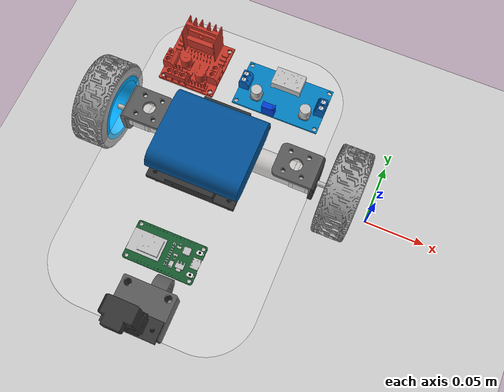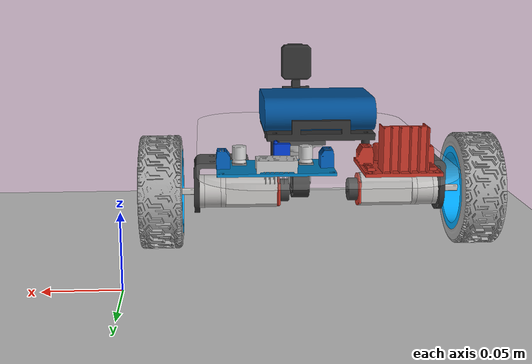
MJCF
<mujoco model="rover_line_wave_real">
  <!-- Pulls in the rover body/mesh/joint/camera tree compiled from rover.urdf -->
  <include file="rover.xml"/>
  <!-- Black line track (generated by scripts/gen_track.py) -->
  <include file="../../objects/tracks/track_wave.xml"/>

  <!-- Implicit integrator: see docs/onshape-to-robot-mjcf.md for why this matters here -->
  <!-- Offscreen framebuffer, only used for top-down renders and debugging; the
       policy's own 64x64 camera needs nothing this large. -->
  <visual>
    <global offwidth="960" offheight="640"/>
  </visual>

  <option integrator="implicitfast"/>

  <asset>
    <texture name="skybox" type="skybox" builtin="gradient"
             rgb1="0.75 0.80 0.86" rgb2="0.55 0.62 0.70" width="256" height="256"/>
  </asset>

  <worldbody>
    <!-- Overhead light so the rover and track are visible in the viewer -->
    <light diffuse=".8 .8 .8" pos="0 0 3" dir="0 0 -1"/>
    <!-- Ground plane sized to the track, not the default 10x10 rover_scene.xml floor -->
    <geom name="floor" type="plane" size="2 2 0.1" rgba=".8 .8 .8 1"/>
  </worldbody>

  <sensor>
    <jointvel name="left_wheel_speed" joint="left_axle"/>
    <jointvel name="right_wheel_speed" joint="right_axle"/>
    <velocimeter name="base_velocity" site="base_imu"/>
  </sensor>

  <actuator>
    <motor name="left_wheel_motor" joint="left_axle" forcerange="-0.11 0.11"/>
    <motor name="right_wheel_motor" joint="right_axle" forcerange="-0.11 0.11"/>
  </actuator>
</mujoco>

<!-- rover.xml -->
<!-- Generated using onshape-to-robot -->
<!-- Onshape https://cad.onshape.com/documents/b96fba38d2ae45c4cf890061/w/5fb0397f3be015e9540849c1/e/012331fafbc1f855042645e5 -->
<mujoco model="C:\Users\rapan\OneDrive\Documents\mujoco\rover">
  <compiler angle="radian" meshdir="meshes" autolimits="true"/>
  <default>
    <default class="C:\Users\rapan\OneDrive\Documents\mujoco\rover">
      <joint frictionloss="0.1" armature="0.005"/>
      <position kp="50" dampratio="1"/>
      <default class="visual">
        <geom type="mesh" contype="0" conaffinity="0" group="2"/>
      </default>
      <default class="collision">
        <geom group="3"/>
      </default>
    </default>
  </default>
  <worldbody>
    <!-- Link tt_motor -->
    <body name="tt_motor" pos="0 0 0" quat="1 0 0 0" childclass="C:\Users\rapan\OneDrive\Documents\mujoco\rover">
      <freejoint name="tt_motor_freejoint"/>
      <inertial pos="-0.121228 -0.032057 0.105597" mass="0.130393" fullinertia="0.000131571 5.33375e-05 0.000170509 1.35524e-07 1.6807e-08 -9.70242e-06"/>
      <!-- Part bracket -->
      <geom name="bracket_visual" type="mesh" class="visual" pos="-0.151412 0.03104 0.081501" quat="0.707107 0.707107 0.000612456 0.000612456" mesh="bracket" material="bracket_material"/>
      <!-- Part battery_pack -->
      <geom name="battery_pack_visual" type="mesh" class="visual" pos="-0.0878099 0.015028 0.166514" quat="0.500433 -0.499567 -0.500433 -0.499567" mesh="battery_pack" material="battery_pack_material"/>
      <!-- Part bracket_2 -->
      <geom name="bracket_2_visual" type="mesh" class="visual" pos="-0.0911337 -0.0440308 0.081501" quat="0.000612456 0.000612456 -0.707107 -0.707107" mesh="bracket" material="bracket_material"/>
      <!-- Part camera_stand -->
      <geom name="camera_stand_visual" type="mesh" class="visual" pos="-0.163787 -0.135933 0.087601" quat="0.707107 -0.707107 -0.000612456 0.000612456" mesh="camera_stand" material="camera_stand_material"/>
      <!-- Part acrylic_body -->
      <geom name="acrylic_body_visual" type="mesh" class="visual" pos="-0.121212 -0.0414953 0.081501" quat="0.000866143 -0 -0 -1" mesh="acrylic_body" material="acrylic_body_material"/>
      <!-- Part motor_driver -->
      <geom name="motor_driver_visual" type="mesh" class="visual" pos="-0.160759 0.0612642 0.104987" quat="1 -0 -0 0.000866143" mesh="motor_driver" material="pcb_1__body1_material"/>
      <!-- Part caster_block -->
      <geom name="caster_block_visual" type="mesh" class="visual" pos="-0.230802 -0.113432 0.081501" quat="0.707107 0.707107 0.000612456 0.000612456" mesh="caster_block" material="caster_block_material"/>
      <!-- Part caster_wheel_base -->
      <geom name="caster_wheel_base_visual" type="mesh" class="visual" pos="-0.16218 -0.197783 0.063401" quat="0.707107 0.707107 0.000612456 0.000612456" mesh="caster_wheel_base" material="caster_wheel_base_material"/>
      <!-- Part battery_holder -->
      <geom name="battery_holder_visual" type="mesh" class="visual" pos="-0.158349 0.00955964 0.094501" quat="0.500433 -0.500433 0.499567 -0.499567" mesh="battery_holder" material="battery_holder_material"/>
      <!-- Part microchip_2 -->
      <geom name="microchip_2_visual" type="mesh" class="visual" pos="-0.122066 -0.0966969 0.084449" quat="0.499567 0.499567 0.500433 0.500433" mesh="microchip_2" material="microchip_2_material"/>
      <!-- Part transistor_3_leg2_2 -->
      <geom name="transistor_3_leg2_2_visual" type="mesh" class="visual" pos="-0.105827 -0.113829 0.084449" quat="0.000612456 0.000612456 -0.707107 -0.707107" mesh="transistor_3_leg2_2" material="transistor_3_leg2_2_material"/>
      <!-- Part resistor1_2 -->
      <geom name="resistor1_2_visual" type="mesh" class="visual" pos="-0.118302 -0.10514 0.08445" quat="0.499567 0.499567 0.500433 0.500433" mesh="resistor1_2" material="resistor1_2_material"/>
      <!-- Part resistor2_32_2 -->
      <geom name="resistor2_32_2_visual" type="mesh" class="visual" pos="-0.126596 -0.108205 0.08445" quat="0.499567 0.499567 0.500433 0.500433" mesh="resistor2_32_2" material="resistor2_32_2_material"/>
      <!-- Part resistor1_2_2 -->
      <geom name="resistor1_2_2_visual" type="mesh" class="visual" pos="-0.118328 -0.0899404 0.08445" quat="0.499567 0.499567 0.500433 0.500433" mesh="resistor1_2" material="resistor1_2_material"/>
      <!-- Part tanchip_2 -->
      <geom name="tanchip_2_visual" type="mesh" class="visual" pos="-0.105955 -0.103219 0.084449" quat="0.707107 0.707107 0.000612456 0.000612456" mesh="tanchip_2" material="tanchip_2_material"/>
      <!-- Part resistor1_2_3 -->
      <geom name="resistor1_2_3_visual" type="mesh" class="visual" pos="-0.121308 -0.101396 0.08445" quat="0.000612456 0.000612456 -0.707107 -0.707107" mesh="resistor1_2" material="resistor1_2_material"/>
      <!-- Part resistor1_2_4 -->
      <geom name="resistor1_2_4_visual" type="mesh" class="visual" pos="-0.121299 -0.106646 0.08445" quat="0.000612456 0.000612456 -0.707107 -0.707107" mesh="resistor1_2" material="resistor1_2_material"/>
      <!-- Part resistor1_2_5 -->
      <geom name="resistor1_2_5_visual" type="mesh" class="visual" pos="-0.121302 -0.104896 0.08445" quat="0.000612456 0.000612456 -0.707107 -0.707107" mesh="resistor1_2" material="resistor1_2_material"/>
      <!-- Part resistor2_32_2_2 -->
      <geom name="resistor2_32_2_2_visual" type="mesh" class="visual" pos="-0.126615 -0.0977048 0.08445" quat="0.499567 0.499567 0.500433 0.500433" mesh="resistor2_32_2" material="resistor2_32_2_material"/>
      <!-- Part resistor1_2_6 -->
      <geom name="resistor1_2_6_visual" type="mesh" class="visual" pos="-0.117221 -0.0941385 0.08445" quat="0.000612456 0.000612456 -0.707107 -0.707107" mesh="resistor1_2" material="resistor1_2_material"/>
      <!-- Part pcb -->
      <geom name="pcb_visual" type="mesh" class="visual" pos="-0.0953081 -0.101476 0.084501" quat="0.500433 -0.499567 -0.500433 -0.499567" mesh="pcb" material="green_pcb"/>
      <!-- Part resistor1_2_7 -->
      <geom name="resistor1_2_7_visual" type="mesh" class="visual" pos="-0.119502 -0.105142 0.08445" quat="0.499567 0.499567 0.500433 0.500433" mesh="resistor1_2" material="resistor1_2_material"/>
      <!-- Part resistor1_2_8 -->
      <geom name="resistor1_2_8_visual" type="mesh" class="visual" pos="-0.121305 -0.103146 0.08445" quat="0.000612456 0.000612456 -0.707107 -0.707107" mesh="resistor1_2" material="resistor1_2_material"/>
      <!-- Part transistor_3_leg_2 -->
      <geom name="transistor_3_leg_2_visual" type="mesh" class="visual" pos="-0.105808 -0.101469 0.084449" quat="0.000612456 0.000612456 -0.707107 -0.707107" mesh="transistor_3_leg_2" material="transistor_3_leg_2_material"/>
      <!-- Part rectangularchip_2 -->
      <geom name="rectangularchip_2_visual" type="mesh" class="visual" pos="-0.103651 -0.105315 0.08445" quat="0.500433 0.500433 -0.499567 -0.499567" mesh="rectangularchip_2" material="rectangularchip_2_material"/>
      <!-- Part resistor1_2_9 -->
      <geom name="resistor1_2_9_visual" type="mesh" class="visual" pos="-0.121311 -0.0996456 0.08445" quat="0.000612456 0.000612456 -0.707107 -0.707107" mesh="resistor1_2" material="resistor1_2_material"/>
      <!-- Part resistor1_2_10 -->
      <geom name="resistor1_2_10_visual" type="mesh" class="visual" pos="-0.117202 -0.104888 0.08445" quat="0.000612456 0.000612456 -0.707107 -0.707107" mesh="resistor1_2" material="resistor1_2_material"/>
      <!-- Part wifi_card_2 -->
      <geom name="wifi_card_2_visual" type="mesh" class="visual" pos="-0.122483 -0.101523 0.084446" quat="0.499567 0.499567 0.500433 0.500433" mesh="wifi_card_2" material="wifi_card_2_material"/>
      <!-- Part resistor1_2_11 -->
      <geom name="resistor1_2_11_visual" type="mesh" class="visual" pos="-0.119528 -0.0899425 0.08445" quat="0.499567 0.499567 0.500433 0.500433" mesh="resistor1_2" material="resistor1_2_material"/>
      <!-- Part 3_digit_7_segment_display__lm2596_buck_converter_4_0_40_to_1_3_37v__lpattern3 -->
      <geom name="3_digit_7_segment_display__lm2596_buck_converter_4_0_40_to_1_3_37v__lpattern3_visual" type="mesh" class="visual" pos="-0.0912555 0.0485567 0.093301" quat="0.000612456 0.000612456 -0.707107 -0.707107" mesh="3_digit_7_segment_display__lm2596_buck_converter_4_0_40_to_1_3_37v__lpattern3" material="3_digit_7_segment_display__lm2596_buck_converter_4_0_40_to_1_3_37v__lpattern3_material"/>
      <!-- Part trimpot_3296w__lm2596_buck_converter_4_0_40_to_1_3_37v_valor_predeterminado__ressalto_extruso3 -->
      <geom name="trimpot_3296w__lm2596_buck_converter_4_0_40_to_1_3_37v_valor_predeterminado__ressalto_extruso3_visual" type="mesh" class="visual" pos="-0.0964444 0.0219627 0.086101" quat="1 0 -0 0.000866143" mesh="trimpot_3296w__lm2596_buck_converter_4_0_40_to_1_3_37v_valor_predeterminado__ressalto_extruso3" material="trimpot_3296w__lm2596_buck_converter_4_0_40_to_1_3_37v_valor_predeterminado__ressalto_extruso3_material"/>
      <!-- Part base___lm2596_buck_converter_4_0_40_to_1_3_37v__mirror2 -->
      <geom name="base___lm2596_buck_converter_4_0_40_to_1_3_37v__mirror2_visual" type="mesh" class="visual" pos="-0.0912364 0.0375567 0.084501" quat="0.000612456 0.000612456 -0.707107 -0.707107" mesh="base___lm2596_buck_converter_4_0_40_to_1_3_37v__mirror2" material="base___lm2596_buck_converter_4_0_40_to_1_3_37v__mirror2_material"/>
      <!-- Part gear_box_bottom_1__body1 -->
      <geom name="gear_box_bottom_1__body1_visual" type="mesh" class="visual" pos="-0.147035 -0.00654 0.061151" quat="0.000612456 0.707107 0.000612456 -0.707107" mesh="gear_box_bottom_1__body1" material="gear_box_bottom_1__body1_material"/>
      <!-- Part pcb_1__body1 -->
      <geom name="pcb_1__body1_visual" type="mesh" class="visual" pos="-0.148535 -0.0065426 0.061151" quat="0.000612456 0.707107 0.000612456 -0.707107" mesh="pcb_1__body1" material="pcb_1__body1_material"/>
      <!-- Part gear_box_top_1__body1 -->
      <geom name="gear_box_top_1__body1_visual" type="mesh" class="visual" pos="-0.147035 -0.00654 0.061151" quat="0.000612456 0.707107 0.000612456 -0.707107" mesh="gear_box_top_1__body1" material="gear_box_top_1__body1_material"/>
      <!-- Part shaft_1__body1 -->
      <geom name="shaft_1__body1_visual" type="mesh" class="visual" pos="-0.148635 -0.00654278 0.061151" quat="0.000612456 0.707107 0.000612456 -0.707107" mesh="shaft_1__body1" material="shaft_1__body1_material"/>
      <!-- Part magnet_1__body1 -->
      <geom name="magnet_1__body1_visual" type="mesh" class="visual" pos="-0.148935 -0.0065433 0.061151" quat="0.000612456 0.707107 0.000612456 -0.707107" mesh="magnet_1__body1" material="magnet_1__body1_material"/>
      <!-- Part 92000a001_passivated_18_8_stainless_steel_pan_head_phillips_screws_1__body1 -->
      <geom name="92000a001_passivated_18_8_stainless_steel_pan_head_phillips_screws_1__body1_visual" type="mesh" class="visual" pos="-0.192788 0.00154075 0.061171" quat="0.000612456 0.707107 0.000612456 -0.707107" mesh="92000a001_passivated_18_8_stainless_steel_pan_head_phillips_screws_1__body1" material="92000a001_passivated_18_8_stainless_steel_pan_head_phillips_screws_1__body1_material"/>
      <!-- Part rotor_holding_1__body1 -->
      <geom name="rotor_holding_1__body1_visual" type="mesh" class="visual" pos="-0.147035 -0.00654 0.061151" quat="0.000612456 0.707107 0.000612456 -0.707107" mesh="rotor_holding_1__body1" material="rotor_holding_1__body1_material"/>
      <!-- Part motor_1__body1 -->
      <geom name="motor_1__body1_visual" type="mesh" class="visual" pos="-0.147035 -0.00654 0.061151" quat="0.000612456 0.707107 0.000612456 -0.707107" mesh="motor_1__body1" material="motor_1__body1_material"/>
      <!-- Part gear_box_center_1__body1 -->
      <geom name="gear_box_center_1__body1_visual" type="mesh" class="visual" pos="-0.147035 -0.00654 0.061151" quat="0.000612456 0.707107 0.000612456 -0.707107" mesh="gear_box_center_1__body1" material="gear_box_center_1__body1_material"/>
      <!-- Part 92000a001_passivated_18_8_stainless_steel_pan_head_phillips_screws_1__body1_2 -->
      <geom name="92000a001_passivated_18_8_stainless_steel_pan_head_phillips_screws_1__body1_2_visual" type="mesh" class="visual" pos="-0.192721 -0.0147792 0.061151" quat="0.000612456 0.707107 0.000612456 -0.707107" mesh="92000a001_passivated_18_8_stainless_steel_pan_head_phillips_screws_1__body1" material="92000a001_passivated_18_8_stainless_steel_pan_head_phillips_screws_1__body1_material"/>
      <!-- Part rotor_1__body1 -->
      <geom name="rotor_1__body1_visual" type="mesh" class="visual" pos="-0.150196 -0.00628548 0.061151" quat="0.000612456 0.707107 0.000612456 -0.707107" mesh="rotor_1__body1" material="rotor_1__body1_material"/>
      <!-- Part gear_box_bottom_1__body1_2 -->
      <geom name="gear_box_bottom_1__body1_2_visual" type="mesh" class="visual" pos="-0.0955102 -0.00645075 0.061151" quat="0.000612456 -0.707107 -0.000612456 -0.707107" mesh="gear_box_bottom_1__body1" material="gear_box_bottom_1__body1_material"/>
      <!-- Part pcb_1__body1_2 -->
      <geom name="pcb_1__body1_2_visual" type="mesh" class="visual" pos="-0.0940102 -0.00644815 0.061151" quat="0.000612456 -0.707107 -0.000612456 -0.707107" mesh="pcb_1__body1" material="pcb_1__body1_material"/>
      <!-- Part gear_box_top_1__body1_2 -->
      <geom name="gear_box_top_1__body1_2_visual" type="mesh" class="visual" pos="-0.0955102 -0.00645075 0.061151" quat="0.000612456 -0.707107 -0.000612456 -0.707107" mesh="gear_box_top_1__body1" material="gear_box_top_1__body1_material"/>
      <!-- Part shaft_1__body1_2 -->
      <geom name="shaft_1__body1_2_visual" type="mesh" class="visual" pos="-0.0939102 -0.00644798 0.061151" quat="0.000612456 -0.707107 -0.000612456 -0.707107" mesh="shaft_1__body1" material="shaft_1__body1_material"/>
      <!-- Part magnet_1__body1_2 -->
      <geom name="magnet_1__body1_2_visual" type="mesh" class="visual" pos="-0.0936102 -0.00644746 0.061151" quat="0.000612456 -0.707107 -0.000612456 -0.707107" mesh="magnet_1__body1" material="magnet_1__body1_material"/>
      <!-- Part 92000a001_passivated_18_8_stainless_steel_pan_head_phillips_screws_1__body1_3 -->
      <geom name="92000a001_passivated_18_8_stainless_steel_pan_head_phillips_screws_1__body1_3_visual" type="mesh" class="visual" pos="-0.0497851 0.00178847 0.061131" quat="0.000612456 -0.707107 -0.000612456 -0.707107" mesh="92000a001_passivated_18_8_stainless_steel_pan_head_phillips_screws_1__body1" material="92000a001_passivated_18_8_stainless_steel_pan_head_phillips_screws_1__body1_material"/>
      <!-- Part rotor_holding_1__body1_2 -->
      <geom name="rotor_holding_1__body1_2_visual" type="mesh" class="visual" pos="-0.0955102 -0.00645075 0.061151" quat="0.000612456 -0.707107 -0.000612456 -0.707107" mesh="rotor_holding_1__body1" material="rotor_holding_1__body1_material"/>
      <!-- Part motor_1__body1_2 -->
      <geom name="motor_1__body1_2_visual" type="mesh" class="visual" pos="-0.0955102 -0.00645075 0.061151" quat="0.000612456 -0.707107 -0.000612456 -0.707107" mesh="motor_1__body1" material="motor_1__body1_material"/>
      <!-- Part gear_box_center_1__body1_2 -->
      <geom name="gear_box_center_1__body1_2_visual" type="mesh" class="visual" pos="-0.0955102 -0.00645075 0.061151" quat="0.000612456 -0.707107 -0.000612456 -0.707107" mesh="gear_box_center_1__body1" material="gear_box_center_1__body1_material"/>
      <!-- Part 92000a001_passivated_18_8_stainless_steel_pan_head_phillips_screws_1__body1_4 -->
      <geom name="92000a001_passivated_18_8_stainless_steel_pan_head_phillips_screws_1__body1_4_visual" type="mesh" class="visual" pos="-0.0497961 -0.0145316 0.061151" quat="0.000612456 -0.707107 -0.000612456 -0.707107" mesh="92000a001_passivated_18_8_stainless_steel_pan_head_phillips_screws_1__body1" material="92000a001_passivated_18_8_stainless_steel_pan_head_phillips_screws_1__body1_material"/>
      <!-- Part rotor_1__body1_2 -->
      <geom name="rotor_1__body1_2_visual" type="mesh" class="visual" pos="-0.0923506 -0.00618528 0.061151" quat="0.000612456 -0.707107 -0.000612456 -0.707107" mesh="rotor_1__body1" material="rotor_1__body1_material"/>
      <!-- Part usb_socket_2 -->
      <geom name="usb_socket_2_visual" type="mesh" class="visual" pos="-0.119718 -0.101518 0.084441" quat="0.499567 0.499567 0.500433 0.500433" mesh="usb_socket_2" material="usb_socket_2_material"/>
      <!-- Part usb_socket_2_2 -->
      <geom name="usb_socket_2_2_visual" type="mesh" class="visual" pos="-0.119718 -0.101518 0.084441" quat="0.499567 0.499567 0.500433 0.500433" mesh="usb_socket_2__2" material="usb_socket_2__2_material"/>
      <!-- Part usb_socket_2_3 -->
      <geom name="usb_socket_2_3_visual" type="mesh" class="visual" pos="-0.119718 -0.101518 0.084441" quat="0.499567 0.499567 0.500433 0.500433" mesh="usb_socket_2__3" material="usb_socket_2__3_material"/>
      <!-- Part buttonflash_13_2 -->
      <geom name="buttonflash_13_2_visual" type="mesh" class="visual" pos="-0.119683 -0.115843 0.084501" quat="0.499567 0.499567 0.500433 0.500433" mesh="buttonflash_13_2" material="buttonflash_13_2_material"/>
      <!-- Part buttonflash_14_2 -->
      <geom name="buttonflash_14_2_visual" type="mesh" class="visual" pos="-0.119683 -0.115843 0.084501" quat="0.499567 0.499567 0.500433 0.500433" mesh="buttonflash_14_2" material="buttonflash_14_2_material"/>
      <!-- Part buttonflash_13_2_2 -->
      <geom name="buttonflash_13_2_2_visual" type="mesh" class="visual" pos="-0.119711 -0.0996928 0.084501" quat="0.499567 0.499567 0.500433 0.500433" mesh="buttonflash_13_2" material="buttonflash_13_2_material"/>
      <!-- Part buttonflash_14_2_2 -->
      <geom name="buttonflash_14_2_2_visual" type="mesh" class="visual" pos="-0.119711 -0.0996928 0.084501" quat="0.499567 0.499567 0.500433 0.500433" mesh="buttonflash_14_2" material="buttonflash_14_2_material"/>
      <!-- Part dg301_5_0_02__lm2596_buck_converter_4_0_40_to_1_3_37v__imported_3_2_solid1 -->
      <geom name="dg301_5_0_02__lm2596_buck_converter_4_0_40_to_1_3_37v__imported_3_2_solid1_visual" type="mesh" class="visual" pos="-0.0613321 0.0351085 0.086101" quat="0.706494 -0 0 0.707719" mesh="dg301_5_0_02__lm2596_buck_converter_4_0_40_to_1_3_37v__imported_3_2_solid1" material="dg301_5_0_02__lm2596_buck_converter_4_0_40_to_1_3_37v__imported_3_2_solid1_material"/>
      <!-- Part dg301_5_0_02__lm2596_buck_converter_4_0_40_to_1_3_37v__imported_3_1_solid1 -->
      <geom name="dg301_5_0_02__lm2596_buck_converter_4_0_40_to_1_3_37v__imported_3_1_solid1_visual" type="mesh" class="visual" pos="-0.0613321 0.0351085 0.086101" quat="0.706494 -0 0 0.707719" mesh="dg301_5_0_02__lm2596_buck_converter_4_0_40_to_1_3_37v__imported_3_1_solid1" material="dg301_5_0_02__lm2596_buck_converter_4_0_40_to_1_3_37v__imported_3_1_solid1_material"/>
      <!-- Part dg301_5_0_02__lm2596_buck_converter_4_0_40_to_1_3_37v__imported_4_2_solid1 -->
      <geom name="dg301_5_0_02__lm2596_buck_converter_4_0_40_to_1_3_37v__imported_4_2_solid1_visual" type="mesh" class="visual" pos="-0.0613321 0.0351085 0.086101" quat="0.706494 -0 0 0.707719" mesh="dg301_5_0_02__lm2596_buck_converter_4_0_40_to_1_3_37v__imported_4_2_solid1" material="dg301_5_0_02__lm2596_buck_converter_4_0_40_to_1_3_37v__imported_4_2_solid1_material"/>
      <!-- Part dg301_5_0_02__lm2596_buck_converter_4_0_40_to_1_3_37v__imported_2_2_solid1 -->
      <geom name="dg301_5_0_02__lm2596_buck_converter_4_0_40_to_1_3_37v__imported_2_2_solid1_visual" type="mesh" class="visual" pos="-0.0613321 0.0351085 0.086101" quat="0.706494 -0 0 0.707719" mesh="dg301_5_0_02__lm2596_buck_converter_4_0_40_to_1_3_37v__imported_2_2_solid1" material="dg301_5_0_02__lm2596_buck_converter_4_0_40_to_1_3_37v__imported_2_2_solid1_material"/>
      <!-- Part dg301_5_0_02__lm2596_buck_converter_4_0_40_to_1_3_37v__imported_1_solid1 -->
      <geom name="dg301_5_0_02__lm2596_buck_converter_4_0_40_to_1_3_37v__imported_1_solid1_visual" type="mesh" class="visual" pos="-0.0613321 0.0351085 0.086101" quat="0.706494 -0 0 0.707719" mesh="dg301_5_0_02__lm2596_buck_converter_4_0_40_to_1_3_37v__imported_1_solid1" material="dg301_5_0_02__lm2596_buck_converter_4_0_40_to_1_3_37v__imported_1_solid1_material"/>
      <!-- Part dg301_5_0_02__lm2596_buck_converter_4_0_40_to_1_3_37v__imported_2_1_solid1 -->
      <geom name="dg301_5_0_02__lm2596_buck_converter_4_0_40_to_1_3_37v__imported_2_1_solid1_visual" type="mesh" class="visual" pos="-0.0613321 0.0351085 0.086101" quat="0.706494 -0 0 0.707719" mesh="dg301_5_0_02__lm2596_buck_converter_4_0_40_to_1_3_37v__imported_2_1_solid1" material="dg301_5_0_02__lm2596_buck_converter_4_0_40_to_1_3_37v__imported_2_1_solid1_material"/>
      <!-- Part dg301_5_0_02__lm2596_buck_converter_4_0_40_to_1_3_37v__imported_4_1_solid1 -->
      <geom name="dg301_5_0_02__lm2596_buck_converter_4_0_40_to_1_3_37v__imported_4_1_solid1_visual" type="mesh" class="visual" pos="-0.0613321 0.0351085 0.086101" quat="0.706494 -0 0 0.707719" mesh="dg301_5_0_02__lm2596_buck_converter_4_0_40_to_1_3_37v__imported_4_1_solid1" material="dg301_5_0_02__lm2596_buck_converter_4_0_40_to_1_3_37v__imported_4_1_solid1_material"/>
      <!-- Part 220_35v_capacitor__lm2596_buck_converter_4_0_40_to_1_3_37v__chamfer1 -->
      <geom name="220_35v_capacitor__lm2596_buck_converter_4_0_40_to_1_3_37v__chamfer1_visual" type="mesh" class="visual" pos="-0.109475 0.0306751 0.086101" quat="0.000612456 0.000612456 -0.707107 -0.707107" mesh="220_35v_capacitor__lm2596_buck_converter_4_0_40_to_1_3_37v__chamfer1" material="220_35v_capacitor__lm2596_buck_converter_4_0_40_to_1_3_37v__chamfer1_material"/>
      <!-- Part 220_35v_capacitor__lm2596_buck_converter_4_0_40_to_1_3_37v__fillet2 -->
      <geom name="220_35v_capacitor__lm2596_buck_converter_4_0_40_to_1_3_37v__fillet2_visual" type="mesh" class="visual" pos="-0.109475 0.0306751 0.086101" quat="0.000612456 0.000612456 -0.707107 -0.707107" mesh="220_35v_capacitor__lm2596_buck_converter_4_0_40_to_1_3_37v__fillet2" material="220_35v_capacitor__lm2596_buck_converter_4_0_40_to_1_3_37v__fillet2_material"/>
      <!-- Part 220_35v_capacitor__lm2596_buck_converter_4_0_40_to_1_3_37v__chamfer1_2 -->
      <geom name="220_35v_capacitor__lm2596_buck_converter_4_0_40_to_1_3_37v__chamfer1_2_visual" type="mesh" class="visual" pos="-0.0713729 0.0297411 0.086101" quat="0.000612456 0.000612456 -0.707107 -0.707107" mesh="220_35v_capacitor__lm2596_buck_converter_4_0_40_to_1_3_37v__chamfer1" material="220_35v_capacitor__lm2596_buck_converter_4_0_40_to_1_3_37v__chamfer1_material"/>
      <!-- Part 220_35v_capacitor__lm2596_buck_converter_4_0_40_to_1_3_37v__fillet2_2 -->
      <geom name="220_35v_capacitor__lm2596_buck_converter_4_0_40_to_1_3_37v__fillet2_2_visual" type="mesh" class="visual" pos="-0.0713729 0.0297411 0.086101" quat="0.000612456 0.000612456 -0.707107 -0.707107" mesh="220_35v_capacitor__lm2596_buck_converter_4_0_40_to_1_3_37v__fillet2" material="220_35v_capacitor__lm2596_buck_converter_4_0_40_to_1_3_37v__fillet2_material"/>
      <!-- Part dg301_5_0_02__lm2596_buck_converter_4_0_40_to_1_3_37v__imported_3_2_solid1_2 -->
      <geom name="dg301_5_0_02__lm2596_buck_converter_4_0_40_to_1_3_37v__imported_3_2_solid1_2_visual" type="mesh" class="visual" pos="-0.121141 0.0400049 0.086101" quat="0.707719 0 0 -0.706494" mesh="dg301_5_0_02__lm2596_buck_converter_4_0_40_to_1_3_37v__imported_3_2_solid1" material="dg301_5_0_02__lm2596_buck_converter_4_0_40_to_1_3_37v__imported_3_2_solid1_material"/>
      <!-- Part dg301_5_0_02__lm2596_buck_converter_4_0_40_to_1_3_37v__imported_3_1_solid1_2 -->
      <geom name="dg301_5_0_02__lm2596_buck_converter_4_0_40_to_1_3_37v__imported_3_1_solid1_2_visual" type="mesh" class="visual" pos="-0.121141 0.0400049 0.086101" quat="0.707719 0 0 -0.706494" mesh="dg301_5_0_02__lm2596_buck_converter_4_0_40_to_1_3_37v__imported_3_1_solid1" material="dg301_5_0_02__lm2596_buck_converter_4_0_40_to_1_3_37v__imported_3_1_solid1_material"/>
      <!-- Part dg301_5_0_02__lm2596_buck_converter_4_0_40_to_1_3_37v__imported_4_2_solid1_2 -->
      <geom name="dg301_5_0_02__lm2596_buck_converter_4_0_40_to_1_3_37v__imported_4_2_solid1_2_visual" type="mesh" class="visual" pos="-0.121141 0.0400049 0.086101" quat="0.707719 0 0 -0.706494" mesh="dg301_5_0_02__lm2596_buck_converter_4_0_40_to_1_3_37v__imported_4_2_solid1" material="dg301_5_0_02__lm2596_buck_converter_4_0_40_to_1_3_37v__imported_4_2_solid1_material"/>
      <!-- Part dg301_5_0_02__lm2596_buck_converter_4_0_40_to_1_3_37v__imported_2_2_solid1_2 -->
      <geom name="dg301_5_0_02__lm2596_buck_converter_4_0_40_to_1_3_37v__imported_2_2_solid1_2_visual" type="mesh" class="visual" pos="-0.121141 0.0400049 0.086101" quat="0.707719 0 0 -0.706494" mesh="dg301_5_0_02__lm2596_buck_converter_4_0_40_to_1_3_37v__imported_2_2_solid1" material="dg301_5_0_02__lm2596_buck_converter_4_0_40_to_1_3_37v__imported_2_2_solid1_material"/>
      <!-- Part dg301_5_0_02__lm2596_buck_converter_4_0_40_to_1_3_37v__imported_1_solid1_2 -->
      <geom name="dg301_5_0_02__lm2596_buck_converter_4_0_40_to_1_3_37v__imported_1_solid1_2_visual" type="mesh" class="visual" pos="-0.121141 0.0400049 0.086101" quat="0.707719 0 0 -0.706494" mesh="dg301_5_0_02__lm2596_buck_converter_4_0_40_to_1_3_37v__imported_1_solid1" material="dg301_5_0_02__lm2596_buck_converter_4_0_40_to_1_3_37v__imported_1_solid1_material"/>
      <!-- Part dg301_5_0_02__lm2596_buck_converter_4_0_40_to_1_3_37v__imported_2_1_solid1_2 -->
      <geom name="dg301_5_0_02__lm2596_buck_converter_4_0_40_to_1_3_37v__imported_2_1_solid1_2_visual" type="mesh" class="visual" pos="-0.121141 0.0400049 0.086101" quat="0.707719 0 0 -0.706494" mesh="dg301_5_0_02__lm2596_buck_converter_4_0_40_to_1_3_37v__imported_2_1_solid1" material="dg301_5_0_02__lm2596_buck_converter_4_0_40_to_1_3_37v__imported_2_1_solid1_material"/>
      <!-- Part dg301_5_0_02__lm2596_buck_converter_4_0_40_to_1_3_37v__imported_4_1_solid1_2 -->
      <geom name="dg301_5_0_02__lm2596_buck_converter_4_0_40_to_1_3_37v__imported_4_1_solid1_2_visual" type="mesh" class="visual" pos="-0.121141 0.0400049 0.086101" quat="0.707719 0 0 -0.706494" mesh="dg301_5_0_02__lm2596_buck_converter_4_0_40_to_1_3_37v__imported_4_1_solid1" material="dg301_5_0_02__lm2596_buck_converter_4_0_40_to_1_3_37v__imported_4_1_solid1_material"/>
      <!-- Link tire -->
      <body name="tire" pos="-0.0341205 -0.00622479 0.061151" quat="0.707107 0.000612456 -0.707107 0.000612456">
        <!-- Joint from tt_motor to tire -->
        <joint axis="0 0 1" name="left_axle" type="hinge"/>
        <inertial pos="0 0 0" mass="1e-09" fullinertia="1e-09 1e-09 1e-09 0 0 0"/>
        <!-- Part tire -->
        <geom name="tire_visual" type="mesh" class="visual" pos="0 0 0.004" quat="0 0 -1 -0" mesh="tire" material="tire_material"/>
        <geom name="tire_collision" type="cylinder" class="collision" size="0.0325 0.013" material="tire_material"/>
        <!-- Part wheel -->
        <geom name="wheel_visual" type="mesh" class="visual" pos="0 0 0.004" quat="0 0 -1 -0" mesh="wheel" material="wheel_material"/>
      </body>
      <!-- Link tire_2 -->
      <body name="tire_2" pos="-0.208425 -0.00652673 0.061151" quat="0.707107 -0.000612456 0.707107 0.000612456">
        <!-- Joint from tt_motor to tire_2 -->
        <joint axis="0 0 1" name="right_axle" type="hinge"/>
        <inertial pos="0 0 0" mass="1e-09" fullinertia="1e-09 1e-09 1e-09 0 0 0"/>
        <!-- Part wheel_2 -->
        <geom name="wheel_2_visual" type="mesh" class="visual" pos="0 0 0.004" quat="0 -0 1 0" mesh="wheel" material="wheel_material"/>
        <!-- Part tire_2 -->
        <geom name="tire_2_visual" type="mesh" class="visual" pos="0 0 0.004" quat="0 -0 1 0" mesh="tire" material="tire_material"/>
        <geom name="tire_2_collision" type="cylinder" class="collision" size="0.0325 0.013" material="tire_material"/>
      </body>
      <!-- Link camera_holder -->
      <body name="camera_holder" pos="-0.118021 -0.15199 0.097676" quat="0.500433 -0.500433 0.499567 -0.499567">
        <!-- Joint from tt_motor to camera_holder -->
        <joint axis="0 0 1" name="camera_hinge" type="hinge"/>
        <inertial pos="0.000848356 -0.022896 -0.0031" mass="0.0109101" fullinertia="1.69216e-06 5.41218e-07 1.54812e-06 8.7232e-08 0 0"/>
        <!-- Part camera_holder -->
        <geom name="camera_holder_visual" type="mesh" class="visual" pos="0.0112623 -0.0510907 -0.0031" quat="0.707107 0.707107 -0 -0" mesh="camera_holder" material="camera_holder_material"/>
      </body>
      <!-- Link caster_wheel_holder -->
      <body name="caster_wheel_holder" pos="-0.121041 -0.140495 0.057401" quat="0.999925 0 0 0.0122628">
        <!-- Joint from tt_motor to caster_wheel_holder -->
        <joint axis="0 0 1" name="front_wheel_holder"/>
        <inertial pos="0 0 0" mass="1e-09" fullinertia="1e-09 1e-09 1e-09 0 0 0"/>
        <!-- Part caster_wheel_holder -->
        <geom name="caster_wheel_holder_visual" type="mesh" class="visual" pos="-0.107773 -0.0103881 -0.002" quat="0.707107 0.707107 -0 0" mesh="caster_wheel_holder" material="caster_wheel_holder_material"/>
        <!-- Link caster_wheel -->
        <body name="caster_wheel" pos="0.0062 0.0185328 -0.019" quat="0 0.707107 0 0.707107">
          <!-- Joint from caster_wheel_holder to caster_wheel -->
          <joint axis="0 0 1" name="front_wheel"/>
          <inertial pos="0 0 0" mass="1e-09" fullinertia="1e-09 1e-09 1e-09 0 0 0"/>
          <!-- Part caster_wheel -->
          <geom name="caster_wheel_visual" type="mesh" class="visual" pos="-0.0850269 0.0450171 -0.0062" quat="0.707107 -0.707107 0 -0" mesh="caster_wheel" material="caster_wheel_material"/>
          <geom name="caster_wheel_collision" type="sphere" class="collision" size="0.012" material="caster_wheel_material"/>
        </body>
      </body>
    </body>
  </worldbody>
  <asset>
    <mesh file="dg301_5_0_02__lm2596_buck_converter_4_0_40_to_1_3_37v__imported_3_1_solid1.stl"/>
    <mesh file="buttonflash_13_2.stl"/>
    <mesh file="caster_wheel_holder.stl"/>
    <mesh file="caster_wheel.stl"/>
    <mesh file="buttonflash_14_2.stl"/>
    <mesh file="battery_pack.stl"/>
    <mesh file="caster_wheel_base.stl"/>
    <mesh file="pcb_1__body1.stl"/>
    <mesh file="usb_socket_2__2.stl"/>
    <mesh file="gear_box_top_1__body1.stl"/>
    <mesh file="dg301_5_0_02__lm2596_buck_converter_4_0_40_to_1_3_37v__imported_2_2_solid1.stl"/>
    <mesh file="gear_box_center_1__body1.stl"/>
    <mesh file="motor_1__body1.stl"/>
    <mesh file="magnet_1__body1.stl"/>
    <mesh file="rectangularchip_2.stl"/>
    <mesh file="camera_stand.stl"/>
    <mesh file="usb_socket_2.stl"/>
    <mesh file="resistor1_2.stl"/>
    <mesh file="resistor2_32_2.stl"/>
    <mesh file="gear_box_bottom_1__body1.stl"/>
    <mesh file="dg301_5_0_02__lm2596_buck_converter_4_0_40_to_1_3_37v__imported_2_1_solid1.stl"/>
    <mesh file="bracket.stl"/>
    <mesh file="220_35v_capacitor__lm2596_buck_converter_4_0_40_to_1_3_37v__chamfer1.stl"/>
    <mesh file="3_digit_7_segment_display__lm2596_buck_converter_4_0_40_to_1_3_37v__lpattern3.stl"/>
    <mesh file="tanchip_2.stl"/>
    <mesh file="wheel.stl"/>
    <mesh file="motor_driver.stl"/>
    <mesh file="trimpot_3296w__lm2596_buck_converter_4_0_40_to_1_3_37v_valor_predeterminado__ressalto_extruso3.stl"/>
    <mesh file="dg301_5_0_02__lm2596_buck_converter_4_0_40_to_1_3_37v__imported_3_2_solid1.stl"/>
    <mesh file="transistor_3_leg_2.stl"/>
    <mesh file="dg301_5_0_02__lm2596_buck_converter_4_0_40_to_1_3_37v__imported_4_2_solid1.stl"/>
    <mesh file="acrylic_body.stl"/>
    <mesh file="tire.stl"/>
    <mesh file="microchip_2.stl"/>
    <mesh file="camera_holder.stl"/>
    <mesh file="rotor_holding_1__body1.stl"/>
    <mesh file="dg301_5_0_02__lm2596_buck_converter_4_0_40_to_1_3_37v__imported_4_1_solid1.stl"/>
    <mesh file="battery_holder.stl"/>
    <mesh file="shaft_1__body1.stl"/>
    <mesh file="rotor_1__body1.stl"/>
    <mesh file="dg301_5_0_02__lm2596_buck_converter_4_0_40_to_1_3_37v__imported_1_solid1.stl"/>
    <mesh file="220_35v_capacitor__lm2596_buck_converter_4_0_40_to_1_3_37v__fillet2.stl"/>
    <mesh file="transistor_3_leg2_2.stl"/>
    <mesh file="usb_socket_2__3.stl"/>
    <mesh file="caster_block.stl"/>
    <mesh file="pcb.stl"/>
    <mesh file="wifi_card_2.stl"/>
    <mesh file="92000a001_passivated_18_8_stainless_steel_pan_head_phillips_screws_1__body1.stl"/>
    <mesh file="base___lm2596_buck_converter_4_0_40_to_1_3_37v__mirror2.stl"/>

    <material name="green_pcb" rgba="0.08 0.35 0.18 1" specular="0.4" shininess="0.3" reflectance="0.1"/>
    <material name="bracket_material" rgba="0.196078 0.196078 0.196078 1"/>
    <material name="battery_pack_material" rgba="0 0.313725 0.588235 1"/>
    <material name="camera_stand_material" rgba="0.196078 0.196078 0.196078 1"/>
    <material name="acrylic_body_material" rgba="1 1 1 0.15" shininess="0.9" specular="0.9" reflectance="0.3"/>
    <material name="motor_driver_material" rgba="0.627451 0.627451 0.627451 1"/>
    <material name="caster_block_material" rgba="0.196078 0.196078 0.196078 1"/>
    <material name="caster_wheel_base_material" rgba="0.647059 0.647059 0.647059 1"/>
    <material name="battery_holder_material" rgba="0.196078 0.196078 0.196078 1"/>
    <material name="microchip_2_material" rgba="0.74902 0.74902 0.74902 1"/>
    <material name="transistor_3_leg2_2_material" rgba="0.74902 0.74902 0.74902 1"/>
    <material name="resistor1_2_material" rgba="0.74902 0.74902 0.74902 1"/>
    <material name="resistor2_32_2_material" rgba="0.74902 0.74902 0.74902 1"/>
    <material name="tanchip_2_material" rgba="0.74902 0.74902 0.74902 1"/>
    <material name="pcb_material" rgba="0.196078 0.196078 0.196078 1"/>
    <material name="transistor_3_leg_2_material" rgba="0.74902 0.74902 0.74902 1"/>
    <material name="rectangularchip_2_material" rgba="0.74902 0.74902 0.74902 1"/>
    <material name="wifi_card_2_material" rgba="0.74902 0.74902 0.74902 1"/>
    <material name="3_digit_7_segment_display__lm2596_buck_converter_4_0_40_to_1_3_37v__lpattern3_material" rgba="0.752941 0.752941 0.752941 1"/>
    <material name="trimpot_3296w__lm2596_buck_converter_4_0_40_to_1_3_37v_valor_predeterminado__ressalto_extruso3_material" rgba="0.00392157 0.235294 0.823529 1"/>

    <material name="base___lm2596_buck_converter_4_0_40_to_1_3_37v__mirror2_material" rgba="0 0.498039 0.752941 1"/>
    <material name="gear_box_bottom_1__body1_material" rgba="0.74902 0.741176 0.733333 1"/>
    <material name="pcb_1__body1_material" rgba="0.768627 0.207843 0.152941 1"/>
    <material name="gear_box_top_1__body1_material" rgba="0.74902 0.741176 0.733333 1"/>
    <material name="shaft_1__body1_material" rgba="0.74902 0.741176 0.733333 1"/>
    <material name="magnet_1__body1_material" rgba="0.247059 0.247059 0.247059 1"/>
    <material name="92000a001_passivated_18_8_stainless_steel_pan_head_phillips_screws_1__body1_material" rgba="0.627451 0.627451 0.627451 1"/>
    <material name="rotor_holding_1__body1_material" rgba="0.607843 0.52549 0.364706 1"/>
    <material name="motor_1__body1_material" rgba="0.74902 0.741176 0.733333 1"/>
    <material name="gear_box_center_1__body1_material" rgba="0.74902 0.741176 0.733333 1"/>
    <material name="rotor_1__body1_material" rgba="0.74902 0.741176 0.733333 1"/>
    <material name="usb_socket_2_material" rgba="0.74902 0.74902 0.74902 1"/>
    <material name="usb_socket_2__2_material" rgba="0.74902 0.74902 0.74902 1"/>
    <material name="usb_socket_2__3_material" rgba="0.74902 0.74902 0.74902 1"/>
    <material name="buttonflash_13_2_material" rgba="0.0196078 0.0196078 0.0196078 1"/>
    <material name="buttonflash_14_2_material" rgba="0.960784 0.960784 0.964706 1"/>
    <material name="dg301_5_0_02__lm2596_buck_converter_4_0_40_to_1_3_37v__imported_3_2_solid1_material" rgba="0.792157 0.8 0.807843 1"/>
    <material name="dg301_5_0_02__lm2596_buck_converter_4_0_40_to_1_3_37v__imported_3_1_solid1_material" rgba="0.792157 0.8 0.807843 1"/>
    <material name="dg301_5_0_02__lm2596_buck_converter_4_0_40_to_1_3_37v__imported_4_2_solid1_material" rgba="0.792157 0.8 0.807843 1"/>
    <material name="dg301_5_0_02__lm2596_buck_converter_4_0_40_to_1_3_37v__imported_2_2_solid1_material" rgba="0.827451 0.831373 0.835294 1"/>
    <material name="dg301_5_0_02__lm2596_buck_converter_4_0_40_to_1_3_37v__imported_1_solid1_material" rgba="0 0.368627 0.721569 1"/>
    <material name="dg301_5_0_02__lm2596_buck_converter_4_0_40_to_1_3_37v__imported_2_1_solid1_material" rgba="0.827451 0.831373 0.835294 1"/>
    <material name="dg301_5_0_02__lm2596_buck_converter_4_0_40_to_1_3_37v__imported_4_1_solid1_material" rgba="0.792157 0.8 0.807843 1"/>
    <material name="220_35v_capacitor__lm2596_buck_converter_4_0_40_to_1_3_37v__chamfer1_material" rgba="0.501961 0.501961 0.501961 1"/>
    <material name="220_35v_capacitor__lm2596_buck_converter_4_0_40_to_1_3_37v__fillet2_material" rgba="0.768627 0.768627 0.768627 1"/>
    <material name="tire_material" rgba="0.647059 0.647059 0.647059 1"/>
    <material name="wheel_material" rgba="0 0.670588 1 1"/>
    <material name="camera_holder_material" rgba="0.196078 0.196078 0.196078 1"/>
    <material name="caster_wheel_holder_material" rgba="0.647059 0.647059 0.647059 1"/>
    <material name="caster_wheel_material" rgba="0.196078 0.196078 0.196078 1"/>
  </asset>
  <actuator>
  </actuator>
  <equality/>
</mujoco>

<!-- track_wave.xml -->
<mujoco model="track_wave">
  <worldbody>
    <geom type="box" size="0.0353 0.015 0.001" pos="-0.8859 0.0147 0.001" quat="0.919763 0 0 0.392475" contype="0" conaffinity="0" group="3" rgba="0.05 0.05 0.05 1"/>
    <geom type="box" size="0.0351 0.015 0.001" pos="-0.8578 0.0437 0.001" quat="0.921895 0 0 0.387440" contype="0" conaffinity="0" group="3" rgba="0.05 0.05 0.05 1"/>
    <geom type="box" size="0.0347 0.015 0.001" pos="-0.8297 0.0718 0.001" quat="0.926172 0 0 0.377101" contype="0" conaffinity="0" group="3" rgba="0.05 0.05 0.05 1"/>
    <geom type="box" size="0.0340 0.015 0.001" pos="-0.8016 0.0983 0.001" quat="0.932600 0 0 0.360913" contype="0" conaffinity="0" group="3" rgba="0.05 0.05 0.05 1"/>
    <geom type="box" size="0.0332 0.015 0.001" pos="-0.7734 0.1227 0.001" quat="0.941129 0 0 0.338049" contype="0" conaffinity="0" group="3" rgba="0.05 0.05 0.05 1"/>
    <geom type="box" size="0.0323 0.015 0.001" pos="-0.7453 0.1445 0.001" quat="0.951573 0 0 0.307422" contype="0" conaffinity="0" group="3" rgba="0.05 0.05 0.05 1"/>
    <geom type="box" size="0.0314 0.015 0.001" pos="-0.7172 0.1631 0.001" quat="0.963475 0 0 0.267797" contype="0" conaffinity="0" group="3" rgba="0.05 0.05 0.05 1"/>
    <geom type="box" size="0.0305 0.015 0.001" pos="-0.6891 0.1782 0.001" quat="0.975931 0 0 0.218080" contype="0" conaffinity="0" group="3" rgba="0.05 0.05 0.05 1"/>
    <geom type="box" size="0.0298 0.015 0.001" pos="-0.6609 0.1894 0.001" quat="0.987456 0 0 0.157894" contype="0" conaffinity="0" group="3" rgba="0.05 0.05 0.05 1"/>
    <geom type="box" size="0.0293 0.015 0.001" pos="-0.6328 0.1965 0.001" quat="0.996087 0 0 0.088383" contype="0" conaffinity="0" group="3" rgba="0.05 0.05 0.05 1"/>
    <geom type="box" size="0.0291 0.015 0.001" pos="-0.6047 0.1994 0.001" quat="0.999918 0 0 0.012835" contype="0" conaffinity="0" group="3" rgba="0.05 0.05 0.05 1"/>
    <geom type="box" size="0.0292 0.015 0.001" pos="-0.5766 0.1980 0.001" quat="0.997973 0 0 -0.063646" contype="0" conaffinity="0" group="3" rgba="0.05 0.05 0.05 1"/>
    <geom type="box" size="0.0296 0.015 0.001" pos="-0.5484 0.1922 0.001" quat="0.990758 0 0 -0.135644" contype="0" conaffinity="0" group="3" rgba="0.05 0.05 0.05 1"/>
    <geom type="box" size="0.0303 0.015 0.001" pos="-0.5203 0.1823 0.001" quat="0.979966 0 0 -0.199164" contype="0" conaffinity="0" group="3" rgba="0.05 0.05 0.05 1"/>
    <geom type="box" size="0.0311 0.015 0.001" pos="-0.4922 0.1685 0.001" quat="0.967626 0 0 -0.252387" contype="0" conaffinity="0" group="3" rgba="0.05 0.05 0.05 1"/>
    <geom type="box" size="0.0320 0.015 0.001" pos="-0.4641 0.1510 0.001" quat="0.955412 0 0 -0.295275" contype="0" conaffinity="0" group="3" rgba="0.05 0.05 0.05 1"/>
    <geom type="box" size="0.0329 0.015 0.001" pos="-0.4359 0.1303 0.001" quat="0.944413 0 0 -0.328762" contype="0" conaffinity="0" group="3" rgba="0.05 0.05 0.05 1"/>
    <geom type="box" size="0.0338 0.015 0.001" pos="-0.4078 0.1067 0.001" quat="0.935214 0 0 -0.354082" contype="0" conaffinity="0" group="3" rgba="0.05 0.05 0.05 1"/>
    <geom type="box" size="0.0345 0.015 0.001" pos="-0.3797 0.0808 0.001" quat="0.928077 0 0 -0.372390" contype="0" conaffinity="0" group="3" rgba="0.05 0.05 0.05 1"/>
    <geom type="box" size="0.0350 0.015 0.001" pos="-0.3516 0.0532 0.001" quat="0.923082 0 0 -0.384604" contype="0" conaffinity="0" group="3" rgba="0.05 0.05 0.05 1"/>
    <geom type="box" size="0.0353 0.015 0.001" pos="-0.3234 0.0244 0.001" quat="0.920236 0 0 -0.391364" contype="0" conaffinity="0" group="3" rgba="0.05 0.05 0.05 1"/>
    <geom type="box" size="0.0353 0.015 0.001" pos="-0.2953 -0.0049 0.001" quat="0.919526 0 0 -0.393029" contype="0" conaffinity="0" group="3" rgba="0.05 0.05 0.05 1"/>
    <geom type="box" size="0.0352 0.015 0.001" pos="-0.2672 -0.0341 0.001" quat="0.920947 0 0 -0.389689" contype="0" conaffinity="0" group="3" rgba="0.05 0.05 0.05 1"/>
    <geom type="box" size="0.0348 0.015 0.001" pos="-0.2391 -0.0626 0.001" quat="0.924507 0 0 -0.381164" contype="0" conaffinity="0" group="3" rgba="0.05 0.05 0.05 1"/>
    <geom type="box" size="0.0342 0.015 0.001" pos="-0.2109 -0.0897 0.001" quat="0.930219 0 0 -0.367004" contype="0" conaffinity="0" group="3" rgba="0.05 0.05 0.05 1"/>
    <geom type="box" size="0.0335 0.015 0.001" pos="-0.1828 -0.1148 0.001" quat="0.938059 0 0 -0.346474" contype="0" conaffinity="0" group="3" rgba="0.05 0.05 0.05 1"/>
    <geom type="box" size="0.0326 0.015 0.001" pos="-0.1547 -0.1375 0.001" quat="0.947900 0 0 -0.318569" contype="0" conaffinity="0" group="3" rgba="0.05 0.05 0.05 1"/>
    <geom type="box" size="0.0317 0.015 0.001" pos="-0.1266 -0.1572 0.001" quat="0.959391 0 0 -0.282081" contype="0" conaffinity="0" group="3" rgba="0.05 0.05 0.05 1"/>
    <geom type="box" size="0.0308 0.015 0.001" pos="-0.0984 -0.1735 0.001" quat="0.971797 0 0 -0.235820" contype="0" conaffinity="0" group="3" rgba="0.05 0.05 0.05 1"/>
    <geom type="box" size="0.0300 0.015 0.001" pos="-0.0703 -0.1861 0.001" quat="0.983833 0 0 -0.179089" contype="0" conaffinity="0" group="3" rgba="0.05 0.05 0.05 1"/>
    <geom type="box" size="0.0294 0.015 0.001" pos="-0.0422 -0.1946 0.001" quat="0.993659 0 0 -0.112433" contype="0" conaffinity="0" group="3" rgba="0.05 0.05 0.05 1"/>
    <geom type="box" size="0.0291 0.015 0.001" pos="-0.0141 -0.1989 0.001" quat="0.999263 0 0 -0.038398" contype="0" conaffinity="0" group="3" rgba="0.05 0.05 0.05 1"/>
    <geom type="box" size="0.0291 0.015 0.001" pos="0.0141 -0.1989 0.001" quat="0.999263 0 0 0.038398" contype="0" conaffinity="0" group="3" rgba="0.05 0.05 0.05 1"/>
    <geom type="box" size="0.0294 0.015 0.001" pos="0.0422 -0.1946 0.001" quat="0.993659 0 0 0.112433" contype="0" conaffinity="0" group="3" rgba="0.05 0.05 0.05 1"/>
    <geom type="box" size="0.0300 0.015 0.001" pos="0.0703 -0.1861 0.001" quat="0.983833 0 0 0.179089" contype="0" conaffinity="0" group="3" rgba="0.05 0.05 0.05 1"/>
    <geom type="box" size="0.0308 0.015 0.001" pos="0.0984 -0.1735 0.001" quat="0.971797 0 0 0.235820" contype="0" conaffinity="0" group="3" rgba="0.05 0.05 0.05 1"/>
    <geom type="box" size="0.0317 0.015 0.001" pos="0.1266 -0.1572 0.001" quat="0.959391 0 0 0.282081" contype="0" conaffinity="0" group="3" rgba="0.05 0.05 0.05 1"/>
    <geom type="box" size="0.0326 0.015 0.001" pos="0.1547 -0.1375 0.001" quat="0.947900 0 0 0.318569" contype="0" conaffinity="0" group="3" rgba="0.05 0.05 0.05 1"/>
    <geom type="box" size="0.0335 0.015 0.001" pos="0.1828 -0.1148 0.001" quat="0.938059 0 0 0.346474" contype="0" conaffinity="0" group="3" rgba="0.05 0.05 0.05 1"/>
    <geom type="box" size="0.0342 0.015 0.001" pos="0.2109 -0.0897 0.001" quat="0.930219 0 0 0.367004" contype="0" conaffinity="0" group="3" rgba="0.05 0.05 0.05 1"/>
    <geom type="box" size="0.0348 0.015 0.001" pos="0.2391 -0.0626 0.001" quat="0.924507 0 0 0.381164" contype="0" conaffinity="0" group="3" rgba="0.05 0.05 0.05 1"/>
    <geom type="box" size="0.0352 0.015 0.001" pos="0.2672 -0.0341 0.001" quat="0.920947 0 0 0.389689" contype="0" conaffinity="0" group="3" rgba="0.05 0.05 0.05 1"/>
    <geom type="box" size="0.0353 0.015 0.001" pos="0.2953 -0.0049 0.001" quat="0.919526 0 0 0.393029" contype="0" conaffinity="0" group="3" rgba="0.05 0.05 0.05 1"/>
    <geom type="box" size="0.0353 0.015 0.001" pos="0.3234 0.0244 0.001" quat="0.920236 0 0 0.391364" contype="0" conaffinity="0" group="3" rgba="0.05 0.05 0.05 1"/>
    <geom type="box" size="0.0350 0.015 0.001" pos="0.3516 0.0532 0.001" quat="0.923082 0 0 0.384604" contype="0" conaffinity="0" group="3" rgba="0.05 0.05 0.05 1"/>
    <geom type="box" size="0.0345 0.015 0.001" pos="0.3797 0.0808 0.001" quat="0.928077 0 0 0.372390" contype="0" conaffinity="0" group="3" rgba="0.05 0.05 0.05 1"/>
    <geom type="box" size="0.0338 0.015 0.001" pos="0.4078 0.1067 0.001" quat="0.935214 0 0 0.354082" contype="0" conaffinity="0" group="3" rgba="0.05 0.05 0.05 1"/>
    <geom type="box" size="0.0329 0.015 0.001" pos="0.4359 0.1303 0.001" quat="0.944413 0 0 0.328762" contype="0" conaffinity="0" group="3" rgba="0.05 0.05 0.05 1"/>
    <geom type="box" size="0.0320 0.015 0.001" pos="0.4641 0.1510 0.001" quat="0.955412 0 0 0.295275" contype="0" conaffinity="0" group="3" rgba="0.05 0.05 0.05 1"/>
    <geom type="box" size="0.0311 0.015 0.001" pos="0.4922 0.1685 0.001" quat="0.967626 0 0 0.252387" contype="0" conaffinity="0" group="3" rgba="0.05 0.05 0.05 1"/>
    <geom type="box" size="0.0303 0.015 0.001" pos="0.5203 0.1823 0.001" quat="0.979966 0 0 0.199164" contype="0" conaffinity="0" group="3" rgba="0.05 0.05 0.05 1"/>
    <geom type="box" size="0.0296 0.015 0.001" pos="0.5484 0.1922 0.001" quat="0.990758 0 0 0.135644" contype="0" conaffinity="0" group="3" rgba="0.05 0.05 0.05 1"/>
    <geom type="box" size="0.0292 0.015 0.001" pos="0.5766 0.1980 0.001" quat="0.997973 0 0 0.063646" contype="0" conaffinity="0" group="3" rgba="0.05 0.05 0.05 1"/>
    <geom type="box" size="0.0291 0.015 0.001" pos="0.6047 0.1994 0.001" quat="0.999918 0 0 -0.012835" contype="0" conaffinity="0" group="3" rgba="0.05 0.05 0.05 1"/>
    <geom type="box" size="0.0293 0.015 0.001" pos="0.6328 0.1965 0.001" quat="0.996087 0 0 -0.088383" contype="0" conaffinity="0" group="3" rgba="0.05 0.05 0.05 1"/>
    <geom type="box" size="0.0298 0.015 0.001" pos="0.6609 0.1894 0.001" quat="0.987456 0 0 -0.157894" contype="0" conaffinity="0" group="3" rgba="0.05 0.05 0.05 1"/>
    <geom type="box" size="0.0305 0.015 0.001" pos="0.6891 0.1782 0.001" quat="0.975931 0 0 -0.218080" contype="0" conaffinity="0" group="3" rgba="0.05 0.05 0.05 1"/>
    <geom type="box" size="0.0314 0.015 0.001" pos="0.7172 0.1631 0.001" quat="0.963475 0 0 -0.267797" contype="0" conaffinity="0" group="3" rgba="0.05 0.05 0.05 1"/>
    <geom type="box" size="0.0323 0.015 0.001" pos="0.7453 0.1445 0.001" quat="0.951573 0 0 -0.307422" contype="0" conaffinity="0" group="3" rgba="0.05 0.05 0.05 1"/>
    <geom type="box" size="0.0332 0.015 0.001" pos="0.7734 0.1227 0.001" quat="0.941129 0 0 -0.338049" contype="0" conaffinity="0" group="3" rgba="0.05 0.05 0.05 1"/>
    <geom type="box" size="0.0340 0.015 0.001" pos="0.8016 0.0983 0.001" quat="0.932600 0 0 -0.360913" contype="0" conaffinity="0" group="3" rgba="0.05 0.05 0.05 1"/>
    <geom type="box" size="0.0347 0.015 0.001" pos="0.8297 0.0718 0.001" quat="0.926172 0 0 -0.377101" contype="0" conaffinity="0" group="3" rgba="0.05 0.05 0.05 1"/>
    <geom type="box" size="0.0351 0.015 0.001" pos="0.8578 0.0437 0.001" quat="0.921895 0 0 -0.387440" contype="0" conaffinity="0" group="3" rgba="0.05 0.05 0.05 1"/>
    <geom type="box" size="0.0353 0.015 0.001" pos="0.8859 0.0147 0.001" quat="0.919763 0 0 -0.392475" contype="0" conaffinity="0" group="3" rgba="0.05 0.05 0.05 1"/>
  </worldbody>
</mujoco>
